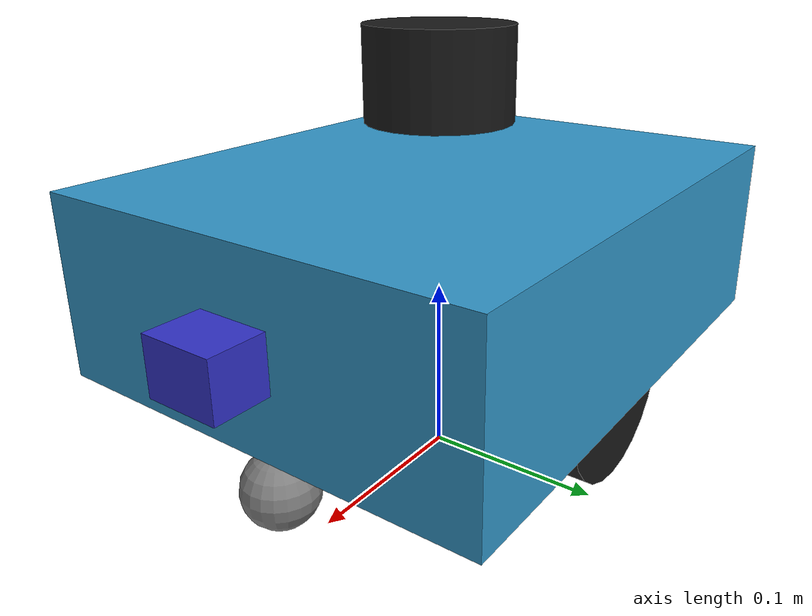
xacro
<?xml version="1.0"?>

<robot name="turtlebot" xmlns:xacro="http://www.ros.org/wiki/xacro">

  <!-- ARGUMENTS                                   -->

  <!-- Simulation mode switch -->
  <xacro:arg name="sim_mode" default="false"/>
  <!-- Serial port for physical or pseudo-hardware microcontroller -->
  <xacro:arg name="serial_port" default="/dev/ttyACM0"/>

  <!-- INCLUDE COMPONENT FILES                     -->

  <!-- Base: Chassis and drive wheels -->
  <xacro:include filename="$(find turtlebot_description)/urdf/base.urdf.xacro"/>

  <!-- Sensors: LiDAR, IMU, Camera -->
  <xacro:include filename="$(find turtlebot_description)/urdf/sensors.urdf.xacro"/>

  <!-- ros2_control: Hardware interface definitions -->
  <xacro:include filename="$(find turtlebot_description)/urdf/ros2_control.urdf.xacro"/>

  <!-- Gazebo: Simulation plugins (only in sim_mode) -->
  <xacro:if value="$(arg sim_mode)">
    <xacro:include filename="$(find turtlebot_description)/urdf/gazebo.urdf.xacro"/>
  </xacro:if>

</robot>

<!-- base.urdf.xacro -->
<robot xmlns:xacro="http://www.ros.org/wiki/xacro">

  <!-- ROBOT PARAMETERS                            -->
  <!--
    These values define the physical robot.
    Modify these to match your actual hardware.
  -->

  <!-- Chassis dimensions -->
  <xacro:property name="chassis_length" value="0.30"/>
  <xacro:property name="chassis_width" value="0.25"/>
  <xacro:property name="chassis_height" value="0.10"/>
  <xacro:property name="chassis_mass" value="5.0"/>

  <!-- Drive wheel parameters -->
  <xacro:property name="wheel_radius" value="0.05"/>
  <xacro:property name="wheel_width" value="0.025"/>
  <xacro:property name="wheel_mass" value="0.5"/>
  <xacro:property name="wheel_separation" value="0.20"/>

  <!-- Caster wheel parameters -->
  <xacro:property name="caster_radius" value="0.02"/>
  <xacro:property name="caster_mass" value="0.1"/>

  <!-- Ground clearance -->
  <xacro:property name="ground_clearance" value="0.02"/>

  <!-- INERTIA MACROS                              -->
  <!--
    Inertia tensors are required for physics simulation.
    These macros calculate standard shapes' inertias.
  -->

  <xacro:macro name="box_inertia" params="m x y z">
    <inertia ixx="${m*(y*y+z*z)/12.0}" ixy="0.0" ixz="0.0"
             iyy="${m*(x*x+z*z)/12.0}" iyz="0.0"
             izz="${m*(x*x+y*y)/12.0}"/>
  </xacro:macro>

  <xacro:macro name="cylinder_inertia" params="m r h">
    <inertia ixx="${m*(3*r*r+h*h)/12.0}" ixy="0.0" ixz="0.0"
             iyy="${m*(3*r*r+h*h)/12.0}" iyz="0.0"
             izz="${m*r*r/2.0}"/>
  </xacro:macro>

  <xacro:macro name="sphere_inertia" params="m r">
    <inertia ixx="${2*m*r*r/5.0}" ixy="0.0" ixz="0.0"
             iyy="${2*m*r*r/5.0}" iyz="0.0"
             izz="${2*m*r*r/5.0}"/>
  </xacro:macro>

  <!-- BASE FOOTPRINT (Ground Projection)          -->
  <!--
    base_footprint is a virtual frame at ground level.
    Nav2 uses this as the robot's 2D position.

    TF: base_footprint -> base_link (fixed, Z offset)
  -->

  <link name="base_footprint"/>

  <joint name="base_footprint_joint" type="fixed">
    <parent link="base_footprint"/>
    <child link="base_link"/>
    <origin xyz="0 0 ${wheel_radius + ground_clearance}" rpy="0 0 0"/>
  </joint>

  <!-- BASE LINK (Chassis)                         -->
  <!--
    Main robot body. All other links attach here.
    This is the reference frame for most calculations.
  -->

  <link name="base_link">
    <visual>
      <origin xyz="0 0 ${chassis_height/2}" rpy="0 0 0"/>
      <geometry>
        <box size="${chassis_length} ${chassis_width} ${chassis_height}"/>
      </geometry>
      <material name="turtlebot_body">
        <color rgba="0.2 0.6 0.8 1.0"/>
      </material>
    </visual>
    <collision>
      <origin xyz="0 0 ${chassis_height/2}" rpy="0 0 0"/>
      <geometry>
        <box size="${chassis_length} ${chassis_width} ${chassis_height}"/>
      </geometry>
    </collision>
    <inertial>
      <origin xyz="0 0 ${chassis_height/2}" rpy="0 0 0"/>
      <mass value="${chassis_mass}"/>
      <xacro:box_inertia m="${chassis_mass}" x="${chassis_length}" y="${chassis_width}" z="${chassis_height}"/>
    </inertial>
  </link>

  <!-- DRIVE WHEEL MACRO                           -->
  <!--
    Creates a drive wheel with continuous rotation.

    Parameters:
    - name: left_wheel or right_wheel
    - y_offset: +/- wheel_separation/2
  -->

  <xacro:macro name="drive_wheel" params="name y_offset">
    <joint name="${name}_joint" type="continuous">
      <parent link="base_link"/>
      <child link="${name}_link"/>
      <origin xyz="0 ${y_offset} 0" rpy="0 0 0"/>
      <axis xyz="0 1 0"/>
      <limit effort="10.0" velocity="10.0"/>
      <dynamics damping="0.1" friction="0.1"/>
    </joint>

    <link name="${name}_link">
      <visual>
        <origin xyz="0 0 0" rpy="${pi/2} 0 0"/>
        <geometry>
          <cylinder radius="${wheel_radius}" length="${wheel_width}"/>
        </geometry>
        <material name="wheel_black">
          <color rgba="0.1 0.1 0.1 1.0"/>
        </material>
      </visual>
      <collision>
        <origin xyz="0 0 0" rpy="${pi/2} 0 0"/>
        <geometry>
          <cylinder radius="${wheel_radius}" length="${wheel_width}"/>
        </geometry>
      </collision>
      <inertial>
        <origin xyz="0 0 0" rpy="${pi/2} 0 0"/>
        <mass value="${wheel_mass}"/>
        <xacro:cylinder_inertia m="${wheel_mass}" r="${wheel_radius}" h="${wheel_width}"/>
      </inertial>
    </link>
  </xacro:macro>

  <!-- Create left and right drive wheels -->
  <xacro:drive_wheel name="left_wheel" y_offset="${wheel_separation/2}"/>
  <xacro:drive_wheel name="right_wheel" y_offset="${-wheel_separation/2}"/>

  <!-- CASTER WHEEL MACRO                          -->
  <!--
    Creates a passive caster (spherical) for stability.
    These don't drive, just support the robot.
  -->

  <xacro:macro name="caster_wheel" params="name x_offset">
    <joint name="${name}_joint" type="fixed">
      <parent link="base_link"/>
      <child link="${name}_link"/>
      <origin xyz="${x_offset} 0 ${-wheel_radius + caster_radius}" rpy="0 0 0"/>
    </joint>

    <link name="${name}_link">
      <visual>
        <geometry>
          <sphere radius="${caster_radius}"/>
        </geometry>
        <material name="caster_gray">
          <color rgba="0.5 0.5 0.5 1.0"/>
        </material>
      </visual>
      <collision>
        <geometry>
          <sphere radius="${caster_radius}"/>
        </geometry>
      </collision>
      <inertial>
        <mass value="${caster_mass}"/>
        <xacro:sphere_inertia m="${caster_mass}" r="${caster_radius}"/>
      </inertial>
    </link>
  </xacro:macro>

  <!-- Create front and rear casters -->
  <xacro:caster_wheel name="front_caster" x_offset="${chassis_length/2 - caster_radius}"/>
  <xacro:caster_wheel name="rear_caster" x_offset="${-chassis_length/2 + caster_radius}"/>

</robot>

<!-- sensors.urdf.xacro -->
<robot xmlns:xacro="http://www.ros.org/wiki/xacro">

  <!-- SENSOR PARAMETERS                           -->

  <!-- LiDAR parameters -->
  <xacro:property name="lidar_radius" value="0.04"/>
  <xacro:property name="lidar_height" value="0.05"/>
  <xacro:property name="lidar_mass" value="0.2"/>
  <xacro:property name="lidar_x" value="0.0"/>
  <xacro:property name="lidar_z" value="0.15"/>

  <!-- IMU parameters -->
  <xacro:property name="imu_size" value="0.02"/>
  <xacro:property name="imu_mass" value="0.05"/>

  <!-- Camera parameters -->
  <xacro:property name="camera_width" value="0.04"/>
  <xacro:property name="camera_height" value="0.03"/>
  <xacro:property name="camera_depth" value="0.03"/>
  <xacro:property name="camera_mass" value="0.1"/>

  <!-- LIDAR SENSOR                                -->

  <joint name="laser_joint" type="fixed">
    <parent link="base_link"/>
    <child link="laser_frame"/>
    <origin xyz="${lidar_x} 0 ${lidar_z}" rpy="0 0 0"/>
  </joint>

  <link name="laser_frame">
    <visual>
      <origin xyz="0 0 0" rpy="0 0 0"/>
      <geometry>
        <cylinder radius="${lidar_radius}" length="${lidar_height}"/>
      </geometry>
      <material name="lidar_black">
        <color rgba="0.1 0.1 0.1 1.0"/>
      </material>
    </visual>
    <collision>
      <origin xyz="0 0 0" rpy="0 0 0"/>
      <geometry>
        <cylinder radius="${lidar_radius}" length="${lidar_height}"/>
      </geometry>
    </collision>
    <inertial>
      <mass value="${lidar_mass}"/>
      <xacro:cylinder_inertia m="${lidar_mass}" r="${lidar_radius}" h="${lidar_height}"/>
    </inertial>
  </link>

  <!-- IMU SENSOR                                  -->

  <joint name="imu_joint" type="fixed">
    <parent link="base_link"/>
    <child link="imu_link"/>
    <origin xyz="0 0 ${chassis_height/2}" rpy="0 0 0"/>
  </joint>

  <link name="imu_link">
    <visual>
      <geometry>
        <box size="${imu_size} ${imu_size} ${imu_size}"/>
      </geometry>
      <material name="imu_green">
        <color rgba="0.2 0.8 0.2 1.0"/>
      </material>
    </visual>
    <collision>
      <geometry>
        <box size="${imu_size} ${imu_size} ${imu_size}"/>
      </geometry>
    </collision>
    <inertial>
      <mass value="${imu_mass}"/>
      <xacro:box_inertia m="${imu_mass}" x="${imu_size}" y="${imu_size}" z="${imu_size}"/>
    </inertial>
  </link>

  <!-- CAMERA SENSOR (Optional)                    -->

  <joint name="camera_joint" type="fixed">
    <parent link="base_link"/>
    <child link="camera_link"/>
    <origin xyz="${chassis_length/2} 0 ${chassis_height/2}" rpy="0 0 0"/>
  </joint>

  <link name="camera_link">
    <visual>
      <origin xyz="${camera_depth/2} 0 0" rpy="0 0 0"/>
      <geometry>
        <box size="${camera_depth} ${camera_width} ${camera_height}"/>
      </geometry>
      <material name="camera_blue">
        <color rgba="0.2 0.2 0.8 1.0"/>
      </material>
    </visual>
    <collision>
      <origin xyz="${camera_depth/2} 0 0" rpy="0 0 0"/>
      <geometry>
        <box size="${camera_depth} ${camera_width} ${camera_height}"/>
      </geometry>
    </collision>
    <inertial>
      <mass value="${camera_mass}"/>
      <xacro:box_inertia m="${camera_mass}" x="${camera_depth}" y="${camera_width}" z="${camera_height}"/>
    </inertial>
  </link>

  <!-- Camera optical frame (standard orientation for image processing) -->
  <joint name="camera_optical_joint" type="fixed">
    <parent link="camera_link"/>
    <child link="camera_optical_link"/>
    <!-- Rotate to standard optical frame: Z forward, X right, Y down -->
    <origin xyz="0 0 0" rpy="${-pi/2} 0 ${-pi/2}"/>
  </joint>

  <link name="camera_optical_link"/>

</robot>
